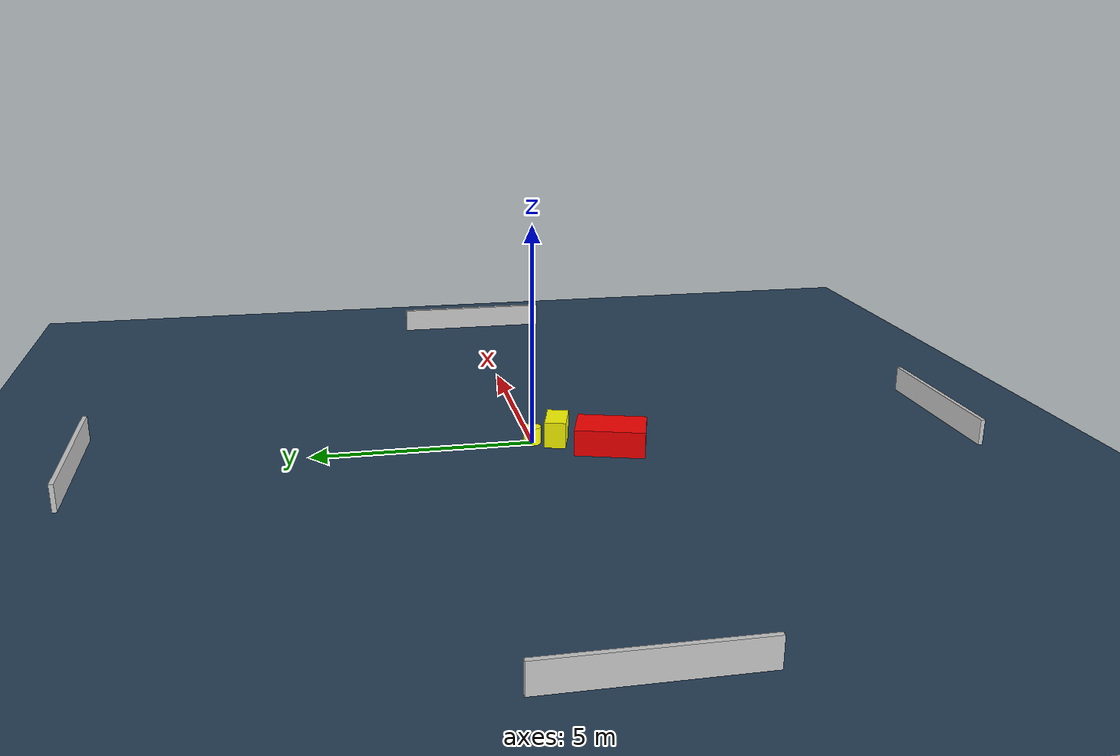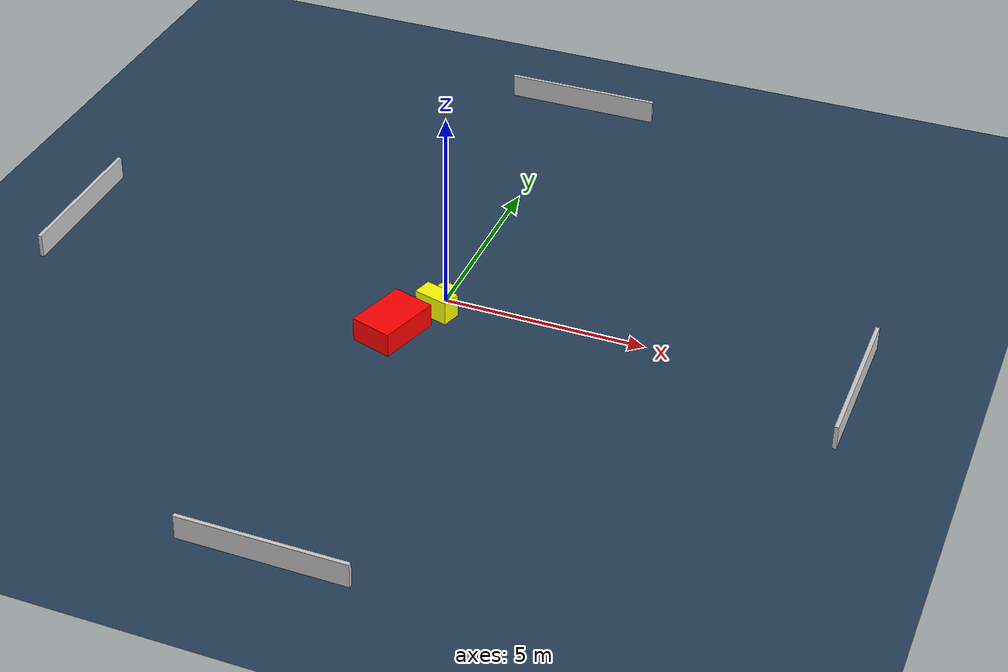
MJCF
<?xml version="1.0" ?>
<mujoco model="generated_environment">
  <option timestep="0.01" integrator="RK4" cone="elliptic"/>
  <default>
    <geom density="1"/>
  </default>
  <asset>
    <texture builtin="gradient" height="3072" name="skybox" rgb1="0.3 0.5 0.7" rgb2="0 0 0" type="skybox" width="512"/>
    <texture builtin="checker" height="300" name="groundplane" rgb1="0.2 0.3 0.4" rgb2="0.1 0.2 0.3" type="2d" width="300"/>
    <material name="groundplane" reflectance="0.2" texrepeat="5 5" texture="groundplane"/>
  </asset>
  <worldbody>
    <light dir="0 0 -1" directional="true" pos="0 0 1.5"/>
    <geom condim="3" friction="0.5 0.005 0.001" material="groundplane" name="floor" pos="0 0 0" size="0 0 0.05" type="plane"/>
    <body name="walls">
      <geom name="wall_1" condim="4" pos="-10.0 0.0 0.3" rgba="0.800000011920929 0.800000011920929 0.800000011920929 1.0" size="0.05 2.0 0.3" type="box"/>
      <geom name="wall_2" condim="4" pos="10.0 0.0 0.3" rgba="0.800000011920929 0.800000011920929 0.800000011920929 1.0" size="0.05 2.0 0.3" type="box"/>
      <geom name="wall_3" condim="4" pos="0.0 -10.0 0.3" rgba="0.800000011920929 0.800000011920929 0.800000011920929 1.0" size="2.0 0.05 0.3" type="box"/>
      <geom name="wall_4" condim="4" pos="0.0 10.0 0.3" rgba="0.800000011920929 0.800000011920929 0.800000011920929 1.0" size="2.0 0.05 0.3" type="box"/>
    </body>
    <body name="robot">
      <joint name="joint_x" type="slide" pos="0 0 0" axis="1 0 0"/>
      <joint name="joint_y" type="slide" pos="0 0 0" axis="0 1 0"/>
      <geom name="robot" type="cylinder" pos="0.0 0.0 0.2" size="0.2 0.2 0.0" mass="5.0" friction="1.0 0.005 0.0001" condim="4" rgba="1.0 1.0 0.0 1.0"/>
    </body>
    <body name="obstacle_1_movable">
      <geom name="obstacle_1_movable" condim="4" pos="-0.0017446897959243134 -0.5659967440481755 0.3" euler="0 0 164.0639231275818" friction="0.0 0.005 0.001" rgba="1.0 1.0 0.0 1.0" size="0.4459492129395338 0.2423140320623122 0.3" type="box" mass="0.1"/>
      <joint type="free"/>
    </body>
    <body name="obstacle_2_static">
      <geom name="obstacle_2_static" condim="4" pos="-0.6757775463290235 -1.6735289129179913 0.3" euler="0 0 162.9158310677043" friction="0.0 0.005 0.001" rgba="1.0 0.0 0.0 1.0" size="0.5338029176772994 0.78663080625026 0.3" type="box"/>
    </body>
  </worldbody>
  <actuator>
    <motor name="actuator_x" joint="joint_x" gear="1" ctrlrange="-1 1"/>
    <motor name="actuator_y" joint="joint_y" gear="1" ctrlrange="-1 1"/>
  </actuator>
</mujoco>
